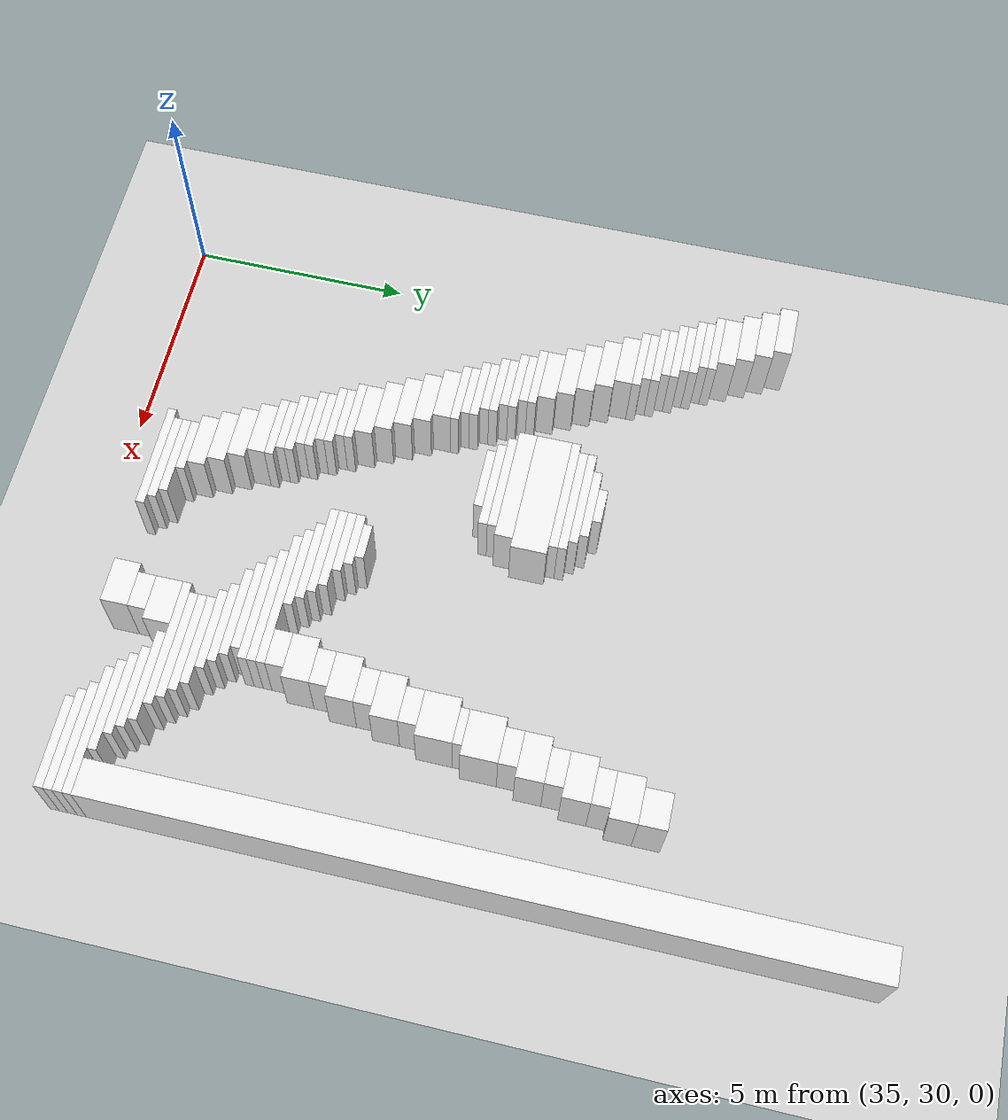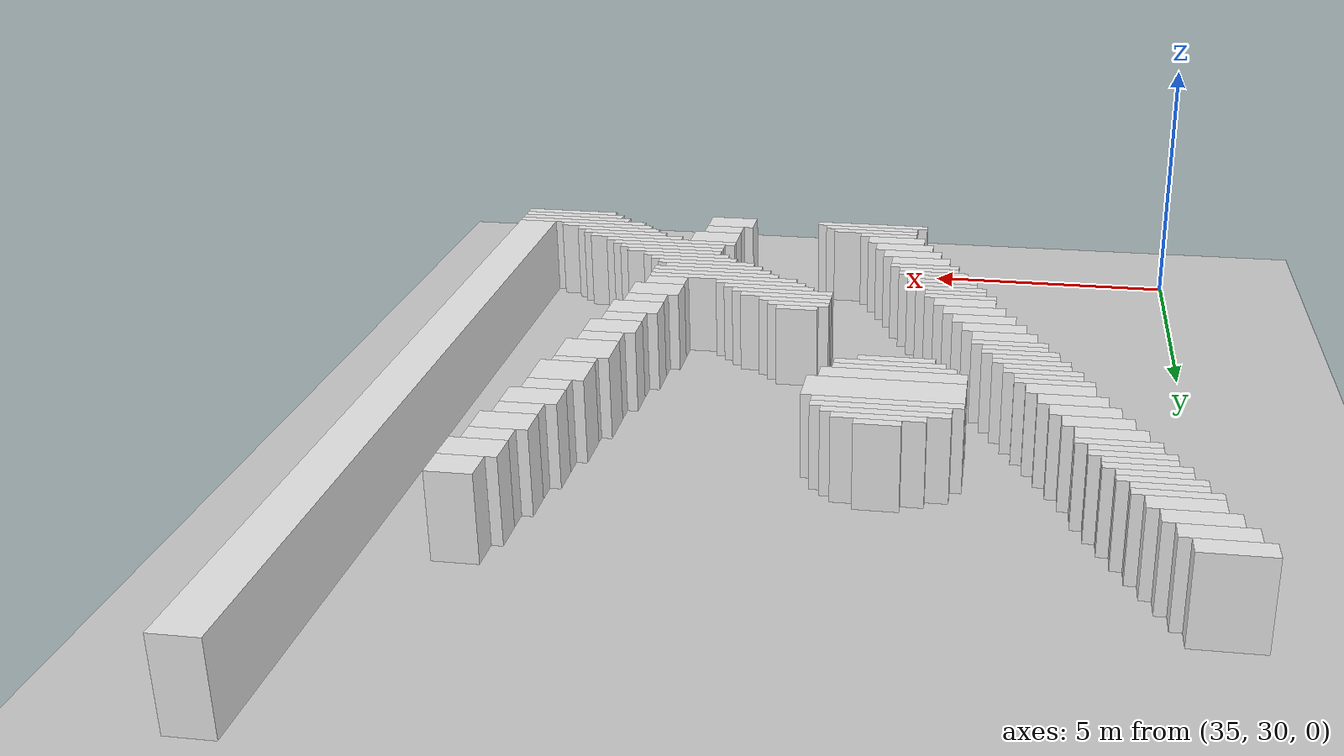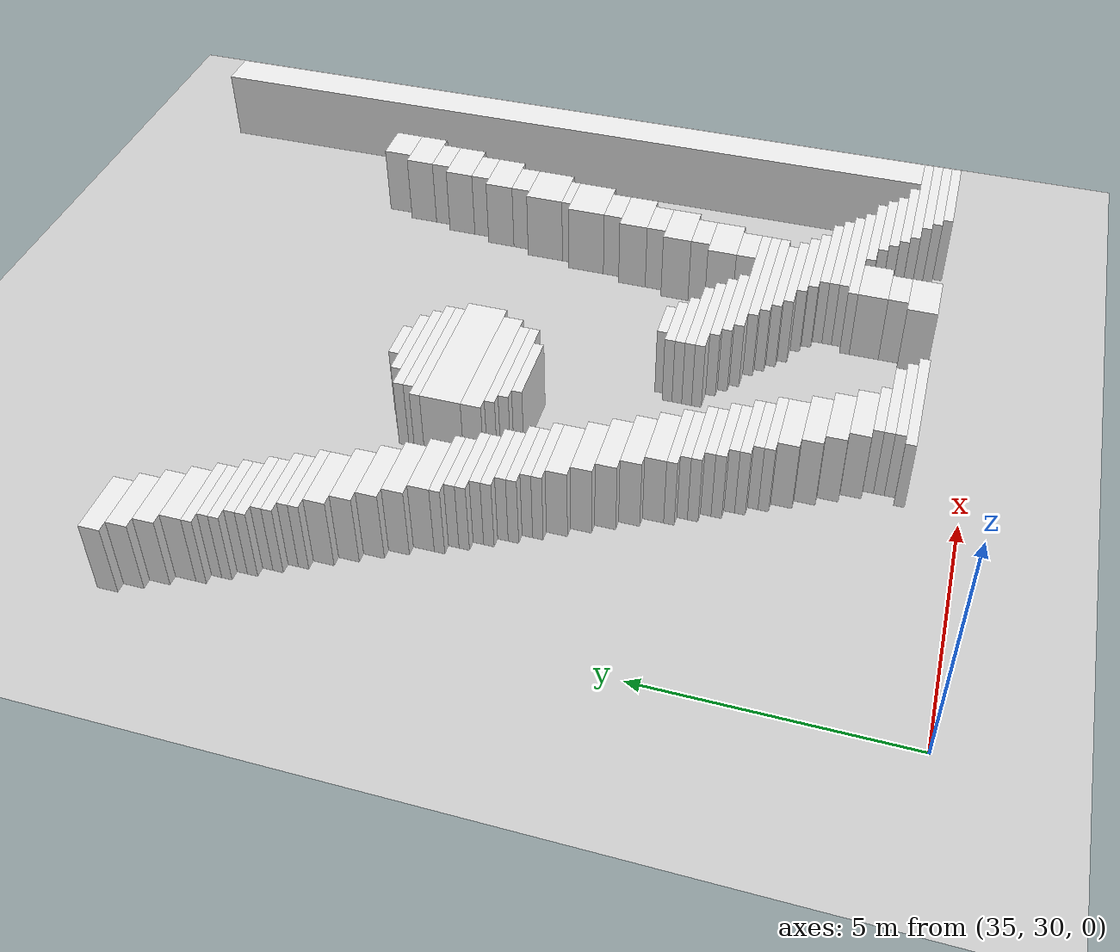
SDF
<sdf version="1.7">
 <world name="default">
  <model name="ground_plane">
   <static>1</static>
   <link name="link">
    <collision name="collision">
     <geometry><plane><normal>0 0 1</normal><size>120 120</size></plane></geometry>
    </collision>
    <visual name="visual">
     <geometry><plane><normal>0 0 1</normal><size>120 120</size></plane></geometry>
     <material>
      <script><uri>file://media/materials/scripts/gazebo.material</uri><name>Gazebo/Grey</name></script>
     </material>
    </visual>
   </link>
  </model>
  <model name="random_complex_02_model">
   <static>1</static>
   <link name="obs_158">
    <pose>35.0000 44.2000 0.8000 0 0 0</pose>
    <collision name="obs_158_col"><geometry><box><size>1.2000 0.4000 1.6000</size></box></geometry></collision>
    <visual name="obs_158_vis">
     <geometry><box><size>1.2000 0.4000 1.6000</size></box></geometry>
     <material>
      <script><uri>file://media/materials/scripts/gazebo.material</uri><name>Gazebo/White</name></script>
     </material>
    </visual>
   </link>
   <link name="obs_173">
    <pose>35.2000 43.8000 0.8000 0 0 0</pose>
    <collision name="obs_173_col"><geometry><box><size>1.2000 0.4000 1.6000</size></box></geometry></collision>
    <visual name="obs_173_vis">
     <geometry><box><size>1.2000 0.4000 1.6000</size></box></geometry>
     <material>
      <script><uri>file://media/materials/scripts/gazebo.material</uri><name>Gazebo/White</name></script>
     </material>
    </visual>
   </link>
   <link name="obs_186">
    <pose>35.4000 43.4000 0.8000 0 0 0</pose>
    <collision name="obs_186_col"><geometry><box><size>1.2000 0.4000 1.6000</size></box></geometry></collision>
    <visual name="obs_186_vis">
     <geometry><box><size>1.2000 0.4000 1.6000</size></box></geometry>
     <material>
      <script><uri>file://media/materials/scripts/gazebo.material</uri><name>Gazebo/White</name></script>
     </material>
    </visual>
   </link>
   <link name="obs_193">
    <pose>46.8000 43.3000 0.8000 0 0 0</pose>
    <collision name="obs_193_col"><geometry><box><size>0.8000 0.6000 1.6000</size></box></geometry></collision>
    <visual name="obs_193_vis">
     <geometry><box><size>0.8000 0.6000 1.6000</size></box></geometry>
     <material>
      <script><uri>file://media/materials/scripts/gazebo.material</uri><name>Gazebo/White</name></script>
     </material>
    </visual>
   </link>
   <link name="obs_201">
    <pose>35.6000 43.0000 0.8000 0 0 0</pose>
    <collision name="obs_201_col"><geometry><box><size>1.2000 0.4000 1.6000</size></box></geometry></collision>
    <visual name="obs_201_vis">
     <geometry><box><size>1.2000 0.4000 1.6000</size></box></geometry>
     <material>
      <script><uri>file://media/materials/scripts/gazebo.material</uri><name>Gazebo/White</name></script>
     </material>
    </visual>
   </link>
   <link name="obs_212">
    <pose>35.7000 42.7000 0.8000 0 0 0</pose>
    <collision name="obs_212_col"><geometry><box><size>1.4000 0.2000 1.6000</size></box></geometry></collision>
    <visual name="obs_212_vis">
     <geometry><box><size>1.4000 0.2000 1.6000</size></box></geometry>
     <material>
      <script><uri>file://media/materials/scripts/gazebo.material</uri><name>Gazebo/White</name></script>
     </material>
    </visual>
   </link>
   <link name="obs_214">
    <pose>46.7000 42.7000 0.8000 0 0 0</pose>
    <collision name="obs_214_col"><geometry><box><size>1.0000 0.6000 1.6000</size></box></geometry></collision>
    <visual name="obs_214_vis">
     <geometry><box><size>1.0000 0.6000 1.6000</size></box></geometry>
     <material>
      <script><uri>file://media/materials/scripts/gazebo.material</uri><name>Gazebo/White</name></script>
     </material>
    </visual>
   </link>
   <link name="obs_221">
    <pose>35.8000 42.5000 0.8000 0 0 0</pose>
    <collision name="obs_221_col"><geometry><box><size>1.2000 0.2000 1.6000</size></box></geometry></collision>
    <visual name="obs_221_vis">
     <geometry><box><size>1.2000 0.2000 1.6000</size></box></geometry>
     <material>
      <script><uri>file://media/materials/scripts/gazebo.material</uri><name>Gazebo/White</name></script>
     </material>
    </visual>
   </link>
   <link name="obs_226">
    <pose>35.9000 42.3000 0.8000 0 0 0</pose>
    <collision name="obs_226_col"><geometry><box><size>1.4000 0.2000 1.6000</size></box></geometry></collision>
    <visual name="obs_226_vis">
     <geometry><box><size>1.4000 0.2000 1.6000</size></box></geometry>
     <material>
      <script><uri>file://media/materials/scripts/gazebo.material</uri><name>Gazebo/White</name></script>
     </material>
    </visual>
   </link>
   <link name="obs_230">
    <pose>46.6000 42.2000 0.8000 0 0 0</pose>
    <collision name="obs_230_col"><geometry><box><size>0.8000 0.4000 1.6000</size></box></geometry></collision>
    <visual name="obs_230_vis">
     <geometry><box><size>0.8000 0.4000 1.6000</size></box></geometry>
     <material>
      <script><uri>file://media/materials/scripts/gazebo.material</uri><name>Gazebo/White</name></script>
     </material>
    </visual>
   </link>
   <link name="obs_233">
    <pose>36.0000 42.1000 0.8000 0 0 0</pose>
    <collision name="obs_233_col"><geometry><box><size>1.2000 0.2000 1.6000</size></box></geometry></collision>
    <visual name="obs_233_vis">
     <geometry><box><size>1.2000 0.2000 1.6000</size></box></geometry>
     <material>
      <script><uri>file://media/materials/scripts/gazebo.material</uri><name>Gazebo/White</name></script>
     </material>
    </visual>
   </link>
   <link name="obs_241">
    <pose>36.1000 41.9000 0.8000 0 0 0</pose>
    <collision name="obs_241_col"><geometry><box><size>1.4000 0.2000 1.6000</size></box></geometry></collision>
    <visual name="obs_241_vis">
     <geometry><box><size>1.4000 0.2000 1.6000</size></box></geometry>
     <material>
      <script><uri>file://media/materials/scripts/gazebo.material</uri><name>Gazebo/White</name></script>
     </material>
    </visual>
   </link>
   <link name="obs_247">
    <pose>36.2000 41.7000 0.8000 0 0 0</pose>
    <collision name="obs_247_col"><geometry><box><size>1.2000 0.2000 1.6000</size></box></geometry></collision>
    <visual name="obs_247_vis">
     <geometry><box><size>1.2000 0.2000 1.6000</size></box></geometry>
     <material>
      <script><uri>file://media/materials/scripts/gazebo.material</uri><name>Gazebo/White</name></script>
     </material>
    </visual>
   </link>
   <link name="obs_251">
    <pose>46.5000 41.7000 0.8000 0 0 0</pose>
    <collision name="obs_251_col"><geometry><box><size>1.0000 0.6000 1.6000</size></box></geometry></collision>
    <visual name="obs_251_vis">
     <geometry><box><size>1.0000 0.6000 1.6000</size></box></geometry>
     <material>
      <script><uri>file://media/materials/scripts/gazebo.material</uri><name>Gazebo/White</name></script>
     </material>
    </visual>
   </link>
   <link name="obs_258">
    <pose>36.3000 41.5000 0.8000 0 0 0</pose>
    <collision name="obs_258_col"><geometry><box><size>1.4000 0.2000 1.6000</size></box></geometry></collision>
    <visual name="obs_258_vis">
     <geometry><box><size>1.4000 0.2000 1.6000</size></box></geometry>
     <material>
      <script><uri>file://media/materials/scripts/gazebo.material</uri><name>Gazebo/White</name></script>
     </material>
    </visual>
   </link>
   <link name="obs_269">
    <pose>36.4000 41.3000 0.8000 0 0 0</pose>
    <collision name="obs_269_col"><geometry><box><size>1.2000 0.2000 1.6000</size></box></geometry></collision>
    <visual name="obs_269_vis">
     <geometry><box><size>1.2000 0.2000 1.6000</size></box></geometry>
     <material>
      <script><uri>file://media/materials/scripts/gazebo.material</uri><name>Gazebo/White</name></script>
     </material>
    </visual>
   </link>
   <link name="obs_270">
    <pose>46.4000 41.2000 0.8000 0 0 0</pose>
    <collision name="obs_270_col"><geometry><box><size>0.8000 0.4000 1.6000</size></box></geometry></collision>
    <visual name="obs_270_vis">
     <geometry><box><size>0.8000 0.4000 1.6000</size></box></geometry>
     <material>
      <script><uri>file://media/materials/scripts/gazebo.material</uri><name>Gazebo/White</name></script>
     </material>
    </visual>
   </link>
   <link name="obs_278">
    <pose>36.5000 41.1000 0.8000 0 0 0</pose>
    <collision name="obs_278_col"><geometry><box><size>1.4000 0.2000 1.6000</size></box></geometry></collision>
    <visual name="obs_278_vis">
     <geometry><box><size>1.4000 0.2000 1.6000</size></box></geometry>
     <material>
      <script><uri>file://media/materials/scripts/gazebo.material</uri><name>Gazebo/White</name></script>
     </material>
    </visual>
   </link>
   <link name="obs_287">
    <pose>40.4000 40.9000 0.8000 0 0 0</pose>
    <collision name="obs_287_col"><geometry><box><size>0.8000 0.2000 1.6000</size></box></geometry></collision>
    <visual name="obs_287_vis">
     <geometry><box><size>0.8000 0.2000 1.6000</size></box></geometry>
     <material>
      <script><uri>file://media/materials/scripts/gazebo.material</uri><name>Gazebo/White</name></script>
     </material>
    </visual>
   </link>
   <link name="obs_289">
    <pose>36.6000 40.8000 0.8000 0 0 0</pose>
    <collision name="obs_289_col"><geometry><box><size>1.2000 0.4000 1.6000</size></box></geometry></collision>
    <visual name="obs_289_vis">
     <geometry><box><size>1.2000 0.4000 1.6000</size></box></geometry>
     <material>
      <script><uri>file://media/materials/scripts/gazebo.material</uri><name>Gazebo/White</name></script>
     </material>
    </visual>
   </link>
   <link name="obs_297">
    <pose>40.4000 40.7000 0.8000 0 0 0</pose>
    <collision name="obs_297_col"><geometry><box><size>1.6000 0.2000 1.6000</size></box></geometry></collision>
    <visual name="obs_297_vis">
     <geometry><box><size>1.6000 0.2000 1.6000</size></box></geometry>
     <material>
      <script><uri>file://media/materials/scripts/gazebo.material</uri><name>Gazebo/White</name></script>
     </material>
    </visual>
   </link>
   <link name="obs_298">
    <pose>46.3000 40.7000 0.8000 0 0 0</pose>
    <collision name="obs_298_col"><geometry><box><size>1.0000 0.6000 1.6000</size></box></geometry></collision>
    <visual name="obs_298_vis">
     <geometry><box><size>1.0000 0.6000 1.6000</size></box></geometry>
     <material>
      <script><uri>file://media/materials/scripts/gazebo.material</uri><name>Gazebo/White</name></script>
     </material>
    </visual>
   </link>
   <link name="obs_309">
    <pose>40.3000 40.5000 0.8000 0 0 0</pose>
    <collision name="obs_309_col"><geometry><box><size>2.2000 0.2000 1.6000</size></box></geometry></collision>
    <visual name="obs_309_vis">
     <geometry><box><size>2.2000 0.2000 1.6000</size></box></geometry>
     <material>
      <script><uri>file://media/materials/scripts/gazebo.material</uri><name>Gazebo/White</name></script>
     </material>
    </visual>
   </link>
   <link name="obs_310">
    <pose>36.8000 40.4000 0.8000 0 0 0</pose>
    <collision name="obs_310_col"><geometry><box><size>1.2000 0.4000 1.6000</size></box></geometry></collision>
    <visual name="obs_310_vis">
     <geometry><box><size>1.2000 0.4000 1.6000</size></box></geometry>
     <material>
      <script><uri>file://media/materials/scripts/gazebo.material</uri><name>Gazebo/White</name></script>
     </material>
    </visual>
   </link>
   <link name="obs_316">
    <pose>40.4000 40.3000 0.8000 0 0 0</pose>
    <collision name="obs_316_col"><geometry><box><size>2.4000 0.2000 1.6000</size></box></geometry></collision>
    <visual name="obs_316_vis">
     <geometry><box><size>2.4000 0.2000 1.6000</size></box></geometry>
     <material>
      <script><uri>file://media/materials/scripts/gazebo.material</uri><name>Gazebo/White</name></script>
     </material>
    </visual>
   </link>
   <link name="obs_322">
    <pose>46.2000 40.2000 0.8000 0 0 0</pose>
    <collision name="obs_322_col"><geometry><box><size>0.8000 0.4000 1.6000</size></box></geometry></collision>
    <visual name="obs_322_vis">
     <geometry><box><size>0.8000 0.4000 1.6000</size></box></geometry>
     <material>
      <script><uri>file://media/materials/scripts/gazebo.material</uri><name>Gazebo/White</name></script>
     </material>
    </visual>
   </link>
   <link name="obs_328">
    <pose>40.3000 40.1000 0.8000 0 0 0</pose>
    <collision name="obs_328_col"><geometry><box><size>2.6000 0.2000 1.6000</size></box></geometry></collision>
    <visual name="obs_328_vis">
     <geometry><box><size>2.6000 0.2000 1.6000</size></box></geometry>
     <material>
      <script><uri>file://media/materials/scripts/gazebo.material</uri><name>Gazebo/White</name></script>
     </material>
    </visual>
   </link>
   <link name="obs_329">
    <pose>37.0000 40.0000 0.8000 0 0 0</pose>
    <collision name="obs_329_col"><geometry><box><size>1.2000 0.4000 1.6000</size></box></geometry></collision>
    <visual name="obs_329_vis">
     <geometry><box><size>1.2000 0.4000 1.6000</size></box></geometry>
     <material>
      <script><uri>file://media/materials/scripts/gazebo.material</uri><name>Gazebo/White</name></script>
     </material>
    </visual>
   </link>
   <link name="obs_345">
    <pose>37.2000 39.6000 0.8000 0 0 0</pose>
    <collision name="obs_345_col"><geometry><box><size>1.2000 0.4000 1.6000</size></box></geometry></collision>
    <visual name="obs_345_vis">
     <geometry><box><size>1.2000 0.4000 1.6000</size></box></geometry>
     <material>
      <script><uri>file://media/materials/scripts/gazebo.material</uri><name>Gazebo/White</name></script>
     </material>
    </visual>
   </link>
   <link name="obs_352">
    <pose>40.4000 39.6000 0.8000 0 0 0</pose>
    <collision name="obs_352_col"><geometry><box><size>2.8000 0.8000 1.6000</size></box></geometry></collision>
    <visual name="obs_352_vis">
     <geometry><box><size>2.8000 0.8000 1.6000</size></box></geometry>
     <material>
      <script><uri>file://media/materials/scripts/gazebo.material</uri><name>Gazebo/White</name></script>
     </material>
    </visual>
   </link>
   <link name="obs_353">
    <pose>46.1000 39.6000 0.8000 0 0 0</pose>
    <collision name="obs_353_col"><geometry><box><size>1.0000 0.8000 1.6000</size></box></geometry></collision>
    <visual name="obs_353_vis">
     <geometry><box><size>1.0000 0.8000 1.6000</size></box></geometry>
     <material>
      <script><uri>file://media/materials/scripts/gazebo.material</uri><name>Gazebo/White</name></script>
     </material>
    </visual>
   </link>
   <link name="obs_361">
    <pose>37.4000 39.2000 0.8000 0 0 0</pose>
    <collision name="obs_361_col"><geometry><box><size>1.2000 0.4000 1.6000</size></box></geometry></collision>
    <visual name="obs_361_vis">
     <geometry><box><size>1.2000 0.4000 1.6000</size></box></geometry>
     <material>
      <script><uri>file://media/materials/scripts/gazebo.material</uri><name>Gazebo/White</name></script>
     </material>
    </visual>
   </link>
   <link name="obs_369">
    <pose>46.0000 39.1000 0.8000 0 0 0</pose>
    <collision name="obs_369_col"><geometry><box><size>0.8000 0.2000 1.6000</size></box></geometry></collision>
    <visual name="obs_369_vis">
     <geometry><box><size>0.8000 0.2000 1.6000</size></box></geometry>
     <material>
      <script><uri>file://media/materials/scripts/gazebo.material</uri><name>Gazebo/White</name></script>
     </material>
    </visual>
   </link>
   <link name="obs_372">
    <pose>40.3000 39.0000 0.8000 0 0 0</pose>
    <collision name="obs_372_col"><geometry><box><size>2.6000 0.4000 1.6000</size></box></geometry></collision>
    <visual name="obs_372_vis">
     <geometry><box><size>2.6000 0.4000 1.6000</size></box></geometry>
     <material>
      <script><uri>file://media/materials/scripts/gazebo.material</uri><name>Gazebo/White</name></script>
     </material>
    </visual>
   </link>
   <link name="obs_379">
    <pose>37.5000 38.9000 0.8000 0 0 0</pose>
    <collision name="obs_379_col"><geometry><box><size>1.4000 0.2000 1.6000</size></box></geometry></collision>
    <visual name="obs_379_vis">
     <geometry><box><size>1.4000 0.2000 1.6000</size></box></geometry>
     <material>
      <script><uri>file://media/materials/scripts/gazebo.material</uri><name>Gazebo/White</name></script>
     </material>
    </visual>
   </link>
   <link name="obs_389">
    <pose>37.6000 38.7000 0.8000 0 0 0</pose>
    <collision name="obs_389_col"><geometry><box><size>1.2000 0.2000 1.6000</size></box></geometry></collision>
    <visual name="obs_389_vis">
     <geometry><box><size>1.2000 0.2000 1.6000</size></box></geometry>
     <material>
      <script><uri>file://media/materials/scripts/gazebo.material</uri><name>Gazebo/White</name></script>
     </material>
    </visual>
   </link>
   <link name="obs_390">
    <pose>40.3000 38.7000 0.8000 0 0 0</pose>
    <collision name="obs_390_col"><geometry><box><size>2.2000 0.2000 1.6000</size></box></geometry></collision>
    <visual name="obs_390_vis">
     <geometry><box><size>2.2000 0.2000 1.6000</size></box></geometry>
     <material>
      <script><uri>file://media/materials/scripts/gazebo.material</uri><name>Gazebo/White</name></script>
     </material>
    </visual>
   </link>
   <link name="obs_399">
    <pose>37.7000 38.5000 0.8000 0 0 0</pose>
    <collision name="obs_399_col"><geometry><box><size>1.4000 0.2000 1.6000</size></box></geometry></collision>
    <visual name="obs_399_vis">
     <geometry><box><size>1.4000 0.2000 1.6000</size></box></geometry>
     <material>
      <script><uri>file://media/materials/scripts/gazebo.material</uri><name>Gazebo/White</name></script>
     </material>
    </visual>
   </link>
   <link name="obs_400">
    <pose>40.4000 38.5000 0.8000 0 0 0</pose>
    <collision name="obs_400_col"><geometry><box><size>2.0000 0.2000 1.6000</size></box></geometry></collision>
    <visual name="obs_400_vis">
     <geometry><box><size>2.0000 0.2000 1.6000</size></box></geometry>
     <material>
      <script><uri>file://media/materials/scripts/gazebo.material</uri><name>Gazebo/White</name></script>
     </material>
    </visual>
   </link>
   <link name="obs_401">
    <pose>45.9000 38.6000 0.8000 0 0 0</pose>
    <collision name="obs_401_col"><geometry><box><size>1.0000 0.8000 1.6000</size></box></geometry></collision>
    <visual name="obs_401_vis">
     <geometry><box><size>1.0000 0.8000 1.6000</size></box></geometry>
     <material>
      <script><uri>file://media/materials/scripts/gazebo.material</uri><name>Gazebo/White</name></script>
     </material>
    </visual>
   </link>
   <link name="obs_409">
    <pose>37.8000 38.3000 0.8000 0 0 0</pose>
    <collision name="obs_409_col"><geometry><box><size>1.2000 0.2000 1.6000</size></box></geometry></collision>
    <visual name="obs_409_vis">
     <geometry><box><size>1.2000 0.2000 1.6000</size></box></geometry>
     <material>
      <script><uri>file://media/materials/scripts/gazebo.material</uri><name>Gazebo/White</name></script>
     </material>
    </visual>
   </link>
   <link name="obs_410">
    <pose>40.3000 38.3000 0.8000 0 0 0</pose>
    <collision name="obs_410_col"><geometry><box><size>1.4000 0.2000 1.6000</size></box></geometry></collision>
    <visual name="obs_410_vis">
     <geometry><box><size>1.4000 0.2000 1.6000</size></box></geometry>
     <material>
      <script><uri>file://media/materials/scripts/gazebo.material</uri><name>Gazebo/White</name></script>
     </material>
    </visual>
   </link>
   <link name="obs_417">
    <pose>37.9000 38.1000 0.8000 0 0 0</pose>
    <collision name="obs_417_col"><geometry><box><size>1.4000 0.2000 1.6000</size></box></geometry></collision>
    <visual name="obs_417_vis">
     <geometry><box><size>1.4000 0.2000 1.6000</size></box></geometry>
     <material>
      <script><uri>file://media/materials/scripts/gazebo.material</uri><name>Gazebo/White</name></script>
     </material>
    </visual>
   </link>
   <link name="obs_419">
    <pose>45.8000 38.0000 0.8000 0 0 0</pose>
    <collision name="obs_419_col"><geometry><box><size>0.8000 0.4000 1.6000</size></box></geometry></collision>
    <visual name="obs_419_vis">
     <geometry><box><size>0.8000 0.4000 1.6000</size></box></geometry>
     <material>
      <script><uri>file://media/materials/scripts/gazebo.material</uri><name>Gazebo/White</name></script>
     </material>
    </visual>
   </link>
   <link name="obs_427">
    <pose>38.0000 37.9000 0.8000 0 0 0</pose>
    <collision name="obs_427_col"><geometry><box><size>1.2000 0.2000 1.6000</size></box></geometry></collision>
    <visual name="obs_427_vis">
     <geometry><box><size>1.2000 0.2000 1.6000</size></box></geometry>
     <material>
      <script><uri>file://media/materials/scripts/gazebo.material</uri><name>Gazebo/White</name></script>
     </material>
    </visual>
   </link>
   <link name="obs_434">
    <pose>38.1000 37.7000 0.8000 0 0 0</pose>
    <collision name="obs_434_col"><geometry><box><size>1.4000 0.2000 1.6000</size></box></geometry></collision>
    <visual name="obs_434_vis">
     <geometry><box><size>1.4000 0.2000 1.6000</size></box></geometry>
     <material>
      <script><uri>file://media/materials/scripts/gazebo.material</uri><name>Gazebo/White</name></script>
     </material>
    </visual>
   </link>
   <link name="obs_441">
    <pose>38.2000 37.5000 0.8000 0 0 0</pose>
    <collision name="obs_441_col"><geometry><box><size>1.2000 0.2000 1.6000</size></box></geometry></collision>
    <visual name="obs_441_vis">
     <geometry><box><size>1.2000 0.2000 1.6000</size></box></geometry>
     <material>
      <script><uri>file://media/materials/scripts/gazebo.material</uri><name>Gazebo/White</name></script>
     </material>
    </visual>
   </link>
   <link name="obs_442">
    <pose>45.7000 37.5000 0.8000 0 0 0</pose>
    <collision name="obs_442_col"><geometry><box><size>1.0000 0.6000 1.6000</size></box></geometry></collision>
    <visual name="obs_442_vis">
     <geometry><box><size>1.0000 0.6000 1.6000</size></box></geometry>
     <material>
      <script><uri>file://media/materials/scripts/gazebo.material</uri><name>Gazebo/White</name></script>
     </material>
    </visual>
   </link>
   <link name="obs_449">
    <pose>38.3000 37.3000 0.8000 0 0 0</pose>
    <collision name="obs_449_col"><geometry><box><size>1.4000 0.2000 1.6000</size></box></geometry></collision>
    <visual name="obs_449_vis">
     <geometry><box><size>1.4000 0.2000 1.6000</size></box></geometry>
     <material>
      <script><uri>file://media/materials/scripts/gazebo.material</uri><name>Gazebo/White</name></script>
     </material>
    </visual>
   </link>
   <link name="obs_456">
    <pose>38.4000 37.0000 0.8000 0 0 0</pose>
    <collision name="obs_456_col"><geometry><box><size>1.2000 0.4000 1.6000</size></box></geometry></collision>
    <visual name="obs_456_vis">
     <geometry><box><size>1.2000 0.4000 1.6000</size></box></geometry>
     <material>
      <script><uri>file://media/materials/scripts/gazebo.material</uri><name>Gazebo/White</name></script>
     </material>
    </visual>
   </link>
   <link name="obs_457">
    <pose>45.6000 37.0000 0.8000 0 0 0</pose>
    <collision name="obs_457_col"><geometry><box><size>0.8000 0.4000 1.6000</size></box></geometry></collision>
    <visual name="obs_457_vis">
     <geometry><box><size>0.8000 0.4000 1.6000</size></box></geometry>
     <material>
      <script><uri>file://media/materials/scripts/gazebo.material</uri><name>Gazebo/White</name></script>
     </material>
    </visual>
   </link>
   <link name="obs_470">
    <pose>38.6000 36.6000 0.8000 0 0 0</pose>
    <collision name="obs_470_col"><geometry><box><size>1.2000 0.4000 1.6000</size></box></geometry></collision>
    <visual name="obs_470_vis">
     <geometry><box><size>1.2000 0.4000 1.6000</size></box></geometry>
     <material>
      <script><uri>file://media/materials/scripts/gazebo.material</uri><name>Gazebo/White</name></script>
     </material>
    </visual>
   </link>
   <link name="obs_476">
    <pose>45.5000 36.5000 0.8000 0 0 0</pose>
    <collision name="obs_476_col"><geometry><box><size>1.0000 0.6000 1.6000</size></box></geometry></collision>
    <visual name="obs_476_vis">
     <geometry><box><size>1.0000 0.6000 1.6000</size></box></geometry>
     <material>
      <script><uri>file://media/materials/scripts/gazebo.material</uri><name>Gazebo/White</name></script>
     </material>
    </visual>
   </link>
   <link name="obs_487">
    <pose>38.8000 36.2000 0.8000 0 0 0</pose>
    <collision name="obs_487_col"><geometry><box><size>1.2000 0.4000 1.6000</size></box></geometry></collision>
    <visual name="obs_487_vis">
     <geometry><box><size>1.2000 0.4000 1.6000</size></box></geometry>
     <material>
      <script><uri>file://media/materials/scripts/gazebo.material</uri><name>Gazebo/White</name></script>
     </material>
    </visual>
   </link>
   <link name="obs_498">
    <pose>42.4000 36.1000 0.8000 0 0 0</pose>
    <collision name="obs_498_col"><geometry><box><size>0.8000 0.2000 1.6000</size></box></geometry></collision>
    <visual name="obs_498_vis">
     <geometry><box><size>0.8000 0.2000 1.6000</size></box></geometry>
     <material>
      <script><uri>file://media/materials/scripts/gazebo.material</uri><name>Gazebo/White</name></script>
     </material>
    </visual>
   </link>
   <link name="obs_499">
    <pose>45.4000 36.0000 0.8000 0 0 0</pose>
    <collision name="obs_499_col"><geometry><box><size>0.8000 0.4000 1.6000</size></box></geometry></collision>
    <visual name="obs_499_vis">
     <geometry><box><size>0.8000 0.4000 1.6000</size></box></geometry>
     <material>
      <script><uri>file://media/materials/scripts/gazebo.material</uri><name>Gazebo/White</name></script>
     </material>
    </visual>
   </link>
   <link name="obs_506">
    <pose>42.4000 35.9000 0.8000 0 0 0</pose>
    <collision name="obs_506_col"><geometry><box><size>1.2000 0.2000 1.6000</size></box></geometry></collision>
    <visual name="obs_506_vis">
     <geometry><box><size>1.2000 0.2000 1.6000</size></box></geometry>
     <material>
      <script><uri>file://media/materials/scripts/gazebo.material</uri><name>Gazebo/White</name></script>
     </material>
    </visual>
   </link>
   <link name="obs_510">
    <pose>39.0000 35.8000 0.8000 0 0 0</pose>
    <collision name="obs_510_col"><geometry><box><size>1.2000 0.4000 1.6000</size></box></geometry></collision>
    <visual name="obs_510_vis">
     <geometry><box><size>1.2000 0.4000 1.6000</size></box></geometry>
     <material>
      <script><uri>file://media/materials/scripts/gazebo.material</uri><name>Gazebo/White</name></script>
     </material>
    </visual>
   </link>
   <link name="obs_517">
    <pose>42.5000 35.7000 0.8000 0 0 0</pose>
    <collision name="obs_517_col"><geometry><box><size>1.4000 0.2000 1.6000</size></box></geometry></collision>
    <visual name="obs_517_vis">
     <geometry><box><size>1.4000 0.2000 1.6000</size></box></geometry>
     <material>
      <script><uri>file://media/materials/scripts/gazebo.material</uri><name>Gazebo/White</name></script>
     </material>
    </visual>
   </link>
   <link name="obs_524">
    <pose>42.7000 35.5000 0.8000 0 0 0</pose>
    <collision name="obs_524_col"><geometry><box><size>1.8000 0.2000 1.6000</size></box></geometry></collision>
    <visual name="obs_524_vis">
     <geometry><box><size>1.8000 0.2000 1.6000</size></box></geometry>
     <material>
      <script><uri>file://media/materials/scripts/gazebo.material</uri><name>Gazebo/White</name></script>
     </material>
    </visual>
   </link>
   <link name="obs_525">
    <pose>45.3000 35.5000 0.8000 0 0 0</pose>
    <collision name="obs_525_col"><geometry><box><size>1.0000 0.6000 1.6000</size></box></geometry></collision>
    <visual name="obs_525_vis">
     <geometry><box><size>1.0000 0.6000 1.6000</size></box></geometry>
     <material>
      <script><uri>file://media/materials/scripts/gazebo.material</uri><name>Gazebo/White</name></script>
     </material>
    </visual>
   </link>
   <link name="obs_527">
    <pose>39.2000 35.4000 0.8000 0 0 0</pose>
    <collision name="obs_527_col"><geometry><box><size>1.2000 0.4000 1.6000</size></box></geometry></collision>
    <visual name="obs_527_vis">
     <geometry><box><size>1.2000 0.4000 1.6000</size></box></geometry>
     <material>
      <script><uri>file://media/materials/scripts/gazebo.material</uri><name>Gazebo/White</name></script>
     </material>
    </visual>
   </link>
   <link name="obs_534">
    <pose>42.8000 35.3000 0.8000 0 0 0</pose>
    <collision name="obs_534_col"><geometry><box><size>2.0000 0.2000 1.6000</size></box></geometry></collision>
    <visual name="obs_534_vis">
     <geometry><box><size>2.0000 0.2000 1.6000</size></box></geometry>
     <material>
      <script><uri>file://media/materials/scripts/gazebo.material</uri><name>Gazebo/White</name></script>
     </material>
    </visual>
   </link>
   <link name="obs_542">
    <pose>39.3000 35.1000 0.8000 0 0 0</pose>
    <collision name="obs_542_col"><geometry><box><size>1.4000 0.2000 1.6000</size></box></geometry></collision>
    <visual name="obs_542_vis">
     <geometry><box><size>1.4000 0.2000 1.6000</size></box></geometry>
     <material>
      <script><uri>file://media/materials/scripts/gazebo.material</uri><name>Gazebo/White</name></script>
     </material>
    </visual>
   </link>
   <link name="obs_543">
    <pose>43.1000 35.1000 0.8000 0 0 0</pose>
    <collision name="obs_543_col"><geometry><box><size>1.8000 0.2000 1.6000</size></box></geometry></collision>
    <visual name="obs_543_vis">
     <geometry><box><size>1.8000 0.2000 1.6000</size></box></geometry>
     <material>
      <script><uri>file://media/materials/scripts/gazebo.material</uri><name>Gazebo/White</name></script>
     </material>
    </visual>
   </link>
   <link name="obs_545">
    <pose>45.2000 35.0000 0.8000 0 0 0</pose>
    <collision name="obs_545_col"><geometry><box><size>0.8000 0.4000 1.6000</size></box></geometry></collision>
    <visual name="obs_545_vis">
     <geometry><box><size>0.8000 0.4000 1.6000</size></box></geometry>
     <material>
      <script><uri>file://media/materials/scripts/gazebo.material</uri><name>Gazebo/White</name></script>
     </material>
    </visual>
   </link>
   <link name="obs_552">
    <pose>39.4000 34.9000 0.8000 0 0 0</pose>
    <collision name="obs_552_col"><geometry><box><size>1.2000 0.2000 1.6000</size></box></geometry></collision>
    <visual name="obs_552_vis">
     <geometry><box><size>1.2000 0.2000 1.6000</size></box></geometry>
     <material>
      <script><uri>file://media/materials/scripts/gazebo.material</uri><name>Gazebo/White</name></script>
     </material>
    </visual>
   </link>
   <link name="obs_553">
    <pose>43.3000 34.9000 0.8000 0 0 0</pose>
    <collision name="obs_553_col"><geometry><box><size>1.8000 0.2000 1.6000</size></box></geometry></collision>
    <visual name="obs_553_vis">
     <geometry><box><size>1.8000 0.2000 1.6000</size></box></geometry>
     <material>
      <script><uri>file://media/materials/scripts/gazebo.material</uri><name>Gazebo/White</name></script>
     </material>
    </visual>
   </link>
   <link name="obs_561">
    <pose>39.5000 34.7000 0.8000 0 0 0</pose>
    <collision name="obs_561_col"><geometry><box><size>1.4000 0.2000 1.6000</size></box></geometry></collision>
    <visual name="obs_561_vis">
     <geometry><box><size>1.4000 0.2000 1.6000</size></box></geometry>
     <material>
      <script><uri>file://media/materials/scripts/gazebo.material</uri><name>Gazebo/White</name></script>
     </material>
    </visual>
   </link>
   <link name="obs_562">
    <pose>44.1000 34.7000 0.8000 0 0 0</pose>
    <collision name="obs_562_col"><geometry><box><size>3.0000 0.2000 1.6000</size></box></geometry></collision>
    <visual name="obs_562_vis">
     <geometry><box><size>3.0000 0.2000 1.6000</size></box></geometry>
     <material>
      <script><uri>file://media/materials/scripts/gazebo.material</uri><name>Gazebo/White</name></script>
     </material>
    </visual>
   </link>
   <link name="obs_569">
    <pose>39.6000 34.5000 0.8000 0 0 0</pose>
    <collision name="obs_569_col"><geometry><box><size>1.2000 0.2000 1.6000</size></box></geometry></collision>
    <visual name="obs_569_vis">
     <geometry><box><size>1.2000 0.2000 1.6000</size></box></geometry>
     <material>
      <script><uri>file://media/materials/scripts/gazebo.material</uri><name>Gazebo/White</name></script>
     </material>
    </visual>
   </link>
   <link name="obs_570">
    <pose>44.3000 34.5000 0.8000 0 0 0</pose>
    <collision name="obs_570_col"><geometry><box><size>2.6000 0.2000 1.6000</size></box></geometry></collision>
    <visual name="obs_570_vis">
     <geometry><box><size>2.6000 0.2000 1.6000</size></box></geometry>
     <material>
      <script><uri>file://media/materials/scripts/gazebo.material</uri><name>Gazebo/White</name></script>
     </material>
    </visual>
   </link>
   <link name="obs_577">
    <pose>39.7000 34.3000 0.8000 0 0 0</pose>
    <collision name="obs_577_col"><geometry><box><size>1.4000 0.2000 1.6000</size></box></geometry></collision>
    <visual name="obs_577_vis">
     <geometry><box><size>1.4000 0.2000 1.6000</size></box></geometry>
     <material>
      <script><uri>file://media/materials/scripts/gazebo.material</uri><name>Gazebo/White</name></script>
     </material>
    </visual>
   </link>
   <link name="obs_578">
    <pose>44.4000 34.3000 0.8000 0 0 0</pose>
    <collision name="obs_578_col"><geometry><box><size>2.4000 0.2000 1.6000</size></box></geometry></collision>
    <visual name="obs_578_vis">
     <geometry><box><size>2.4000 0.2000 1.6000</size></box></geometry>
     <material>
      <script><uri>file://media/materials/scripts/gazebo.material</uri><name>Gazebo/White</name></script>
     </material>
    </visual>
   </link>
   <link name="obs_587">
    <pose>39.8000 34.1000 0.8000 0 0 0</pose>
    <collision name="obs_587_col"><geometry><box><size>1.2000 0.2000 1.6000</size></box></geometry></collision>
    <visual name="obs_587_vis">
     <geometry><box><size>1.2000 0.2000 1.6000</size></box></geometry>
     <material>
      <script><uri>file://media/materials/scripts/gazebo.material</uri><name>Gazebo/White</name></script>
     </material>
    </visual>
   </link>
   <link name="obs_588">
    <pose>44.4000 34.1000 0.8000 0 0 0</pose>
    <collision name="obs_588_col"><geometry><box><size>2.0000 0.2000 1.6000</size></box></geometry></collision>
    <visual name="obs_588_vis">
     <geometry><box><size>2.0000 0.2000 1.6000</size></box></geometry>
     <material>
      <script><uri>file://media/materials/scripts/gazebo.material</uri><name>Gazebo/White</name></script>
     </material>
    </visual>
   </link>
   <link name="obs_595">
    <pose>39.9000 33.9000 0.8000 0 0 0</pose>
    <collision name="obs_595_col"><geometry><box><size>1.4000 0.2000 1.6000</size></box></geometry></collision>
    <visual name="obs_595_vis">
     <geometry><box><size>1.4000 0.2000 1.6000</size></box></geometry>
     <material>
      <script><uri>file://media/materials/scripts/gazebo.material</uri><name>Gazebo/White</name></script>
     </material>
    </visual>
   </link>
   <link name="obs_596">
    <pose>44.6000 33.9000 0.8000 0 0 0</pose>
    <collision name="obs_596_col"><geometry><box><size>2.0000 0.2000 1.6000</size></box></geometry></collision>
    <visual name="obs_596_vis">
     <geometry><box><size>2.0000 0.2000 1.6000</size></box></geometry>
     <material>
      <script><uri>file://media/materials/scripts/gazebo.material</uri><name>Gazebo/White</name></script>
     </material>
    </visual>
   </link>
   <link name="obs_605">
    <pose>40.0000 33.7000 0.8000 0 0 0</pose>
    <collision name="obs_605_col"><geometry><box><size>1.2000 0.2000 1.6000</size></box></geometry></collision>
    <visual name="obs_605_vis">
     <geometry><box><size>1.2000 0.2000 1.6000</size></box></geometry>
     <material>
      <script><uri>file://media/materials/scripts/gazebo.material</uri><name>Gazebo/White</name></script>
     </material>
    </visual>
   </link>
   <link name="obs_606">
    <pose>44.9000 33.7000 0.8000 0 0 0</pose>
    <collision name="obs_606_col"><geometry><box><size>1.8000 0.2000 1.6000</size></box></geometry></collision>
    <visual name="obs_606_vis">
     <geometry><box><size>1.8000 0.2000 1.6000</size></box></geometry>
     <material>
      <script><uri>file://media/materials/scripts/gazebo.material</uri><name>Gazebo/White</name></script>
     </material>
    </visual>
   </link>
   <link name="obs_614">
    <pose>40.1000 33.5000 0.8000 0 0 0</pose>
    <collision name="obs_614_col"><geometry><box><size>1.4000 0.2000 1.6000</size></box></geometry></collision>
    <visual name="obs_614_vis">
     <geometry><box><size>1.4000 0.2000 1.6000</size></box></geometry>
     <material>
      <script><uri>file://media/materials/scripts/gazebo.material</uri><name>Gazebo/White</name></script>
     </material>
    </visual>
   </link>
   <link name="obs_615">
    <pose>45.1000 33.5000 0.8000 0 0 0</pose>
    <collision name="obs_615_col"><geometry><box><size>1.8000 0.2000 1.6000</size></box></geometry></collision>
    <visual name="obs_615_vis">
     <geometry><box><size>1.8000 0.2000 1.6000</size></box></geometry>
     <material>
      <script><uri>file://media/materials/scripts/gazebo.material</uri><name>Gazebo/White</name></script>
     </material>
    </visual>
   </link>
   <link name="obs_624">
    <pose>45.4000 33.3000 0.8000 0 0 0</pose>
    <collision name="obs_624_col"><geometry><box><size>2.0000 0.2000 1.6000</size></box></geometry></collision>
    <visual name="obs_624_vis">
     <geometry><box><size>2.0000 0.2000 1.6000</size></box></geometry>
     <material>
      <script><uri>file://media/materials/scripts/gazebo.material</uri><name>Gazebo/White</name></script>
     </material>
    </visual>
   </link>
   <link name="obs_626">
    <pose>40.2000 33.2000 0.8000 0 0 0</pose>
    <collision name="obs_626_col"><geometry><box><size>1.2000 0.4000 1.6000</size></box></geometry></collision>
    <visual name="obs_626_vis">
     <geometry><box><size>1.2000 0.4000 1.6000</size></box></geometry>
     <material>
      <script><uri>file://media/materials/scripts/gazebo.material</uri><name>Gazebo/White</name></script>
     </material>
    </visual>
   </link>
   <link name="obs_632">
    <pose>45.5000 33.1000 0.8000 0 0 0</pose>
    <collision name="obs_632_col"><geometry><box><size>2.2000 0.2000 1.6000</size></box></geometry></collision>
    <visual name="obs_632_vis">
     <geometry><box><size>2.2000 0.2000 1.6000</size></box></geometry>
     <material>
      <script><uri>file://media/materials/scripts/gazebo.material</uri><name>Gazebo/White</name></script>
     </material>
    </visual>
   </link>
   <link name="obs_641">
    <pose>45.6000 32.9000 0.8000 0 0 0</pose>
    <collision name="obs_641_col"><geometry><box><size>2.4000 0.2000 1.6000</size></box></geometry></collision>
    <visual name="obs_641_vis">
     <geometry><box><size>2.4000 0.2000 1.6000</size></box></geometry>
     <material>
      <script><uri>file://media/materials/scripts/gazebo.material</uri><name>Gazebo/White</name></script>
     </material>
    </visual>
   </link>
   <link name="obs_645">
    <pose>40.4000 32.8000 0.8000 0 0 0</pose>
    <collision name="obs_645_col"><geometry><box><size>1.2000 0.4000 1.6000</size></box></geometry></collision>
    <visual name="obs_645_vis">
     <geometry><box><size>1.2000 0.4000 1.6000</size></box></geometry>
     <material>
      <script><uri>file://media/materials/scripts/gazebo.material</uri><name>Gazebo/White</name></script>
     </material>
    </visual>
   </link>
   <link name="obs_652">
    <pose>45.6000 32.7000 0.8000 0 0 0</pose>
    <collision name="obs_652_col"><geometry><box><size>2.8000 0.2000 1.6000</size></box></geometry></collision>
    <visual name="obs_652_vis">
     <geometry><box><size>2.8000 0.2000 1.6000</size></box></geometry>
     <material>
      <script><uri>file://media/materials/scripts/gazebo.material</uri><name>Gazebo/White</name></script>
     </material>
    </visual>
   </link>
   <link name="obs_659">
    <pose>46.4000 32.5000 0.8000 0 0 0</pose>
    <collision name="obs_659_col"><geometry><box><size>2.0000 0.2000 1.6000</size></box></geometry></collision>
    <visual name="obs_659_vis">
     <geometry><box><size>2.0000 0.2000 1.6000</size></box></geometry>
     <material>
      <script><uri>file://media/materials/scripts/gazebo.material</uri><name>Gazebo/White</name></script>
     </material>
    </visual>
   </link>
   <link name="obs_660">
    <pose>40.6000 32.4000 0.8000 0 0 0</pose>
    <collision name="obs_660_col"><geometry><box><size>1.2000 0.4000 1.6000</size></box></geometry></collision>
    <visual name="obs_660_vis">
     <geometry><box><size>1.2000 0.4000 1.6000</size></box></geometry>
     <material>
      <script><uri>file://media/materials/scripts/gazebo.material</uri><name>Gazebo/White</name></script>
     </material>
    </visual>
   </link>
   <link name="obs_668">
    <pose>46.7000 32.3000 0.8000 0 0 0</pose>
    <collision name="obs_668_col"><geometry><box><size>1.8000 0.2000 1.6000</size></box></geometry></collision>
    <visual name="obs_668_vis">
     <geometry><box><size>1.8000 0.2000 1.6000</size></box></geometry>
     <material>
      <script><uri>file://media/materials/scripts/gazebo.material</uri><name>Gazebo/White</name></script>
     </material>
    </visual>
   </link>
   <link name="obs_670">
    <pose>44.7000 32.3000 0.8000 0 0 0</pose>
    <collision name="obs_670_col"><geometry><box><size>1.0000 0.6000 1.6000</size></box></geometry></collision>
    <visual name="obs_670_vis">
     <geometry><box><size>1.0000 0.6000 1.6000</size></box></geometry>
     <material>
      <script><uri>file://media/materials/scripts/gazebo.material</uri><name>Gazebo/White</name></script>
     </material>
    </visual>
   </link>
   <link name="obs_677">
    <pose>46.9000 32.1000 0.8000 0 0 0</pose>
    <collision name="obs_677_col"><geometry><box><size>1.8000 0.2000 1.6000</size></box></geometry></collision>
    <visual name="obs_677_vis">
     <geometry><box><size>1.8000 0.2000 1.6000</size></box></geometry>
     <material>
      <script><uri>file://media/materials/scripts/gazebo.material</uri><name>Gazebo/White</name></script>
     </material>
    </visual>
   </link>
   <link name="obs_678">
    <pose>48.8000 40.1000 0.8000 0 0 0</pose>
    <collision name="obs_678_col"><geometry><box><size>0.8000 16.6000 1.6000</size></box></geometry></collision>
    <visual name="obs_678_vis">
     <geometry><box><size>0.8000 16.6000 1.6000</size></box></geometry>
     <material>
      <script><uri>file://media/materials/scripts/gazebo.material</uri><name>Gazebo/White</name></script>
     </material>
    </visual>
   </link>
   <link name="obs_680">
    <pose>40.8000 32.0000 0.8000 0 0 0</pose>
    <collision name="obs_680_col"><geometry><box><size>1.2000 0.4000 1.6000</size></box></geometry></collision>
    <visual name="obs_680_vis">
     <geometry><box><size>1.2000 0.4000 1.6000</size></box></geometry>
     <material>
      <script><uri>file://media/materials/scripts/gazebo.material</uri><name>Gazebo/White</name></script>
     </material>
    </visual>
   </link>
   <link name="obs_686">
    <pose>47.2000 31.9000 0.8000 0 0 0</pose>
    <collision name="obs_686_col"><geometry><box><size>2.0000 0.2000 1.6000</size></box></geometry></collision>
    <visual name="obs_686_vis">
     <geometry><box><size>2.0000 0.2000 1.6000</size></box></geometry>
     <material>
      <script><uri>file://media/materials/scripts/gazebo.material</uri><name>Gazebo/White</name></script>
     </material>
    </visual>
   </link>
   <link name="obs_689">
    <pose>44.6000 31.8000 0.8000 0 0 0</pose>
    <collision name="obs_689_col"><geometry><box><size>0.8000 0.4000 1.6000</size></box></geometry></collision>
    <visual name="obs_689_vis">
     <geometry><box><size>0.8000 0.4000 1.6000</size></box></geometry>
     <material>
      <script><uri>file://media/materials/scripts/gazebo.material</uri><name>Gazebo/White</name></script>
     </material>
    </visual>
   </link>
   <link name="obs_696">
    <pose>41.0000 31.7000 0.8000 0 0 0</pose>
    <collision name="obs_696_col"><geometry><box><size>1.2000 0.2000 1.6000</size></box></geometry></collision>
    <visual name="obs_696_vis">
     <geometry><box><size>1.2000 0.2000 1.6000</size></box></geometry>
     <material>
      <script><uri>file://media/materials/scripts/gazebo.material</uri><name>Gazebo/White</name></script>
     </material>
    </visual>
   </link>
   <link name="obs_697">
    <pose>47.8000 31.7000 0.8000 0 0 0</pose>
    <collision name="obs_697_col"><geometry><box><size>2.8000 0.2000 1.6000</size></box></geometry></collision>
    <visual name="obs_697_vis">
     <geometry><box><size>2.8000 0.2000 1.6000</size></box></geometry>
     <material>
      <script><uri>file://media/materials/scripts/gazebo.material</uri><name>Gazebo/White</name></script>
     </material>
    </visual>
   </link>
   <link name="obs_707">
    <pose>41.3000 31.5000 0.8000 0 0 0</pose>
    <collision name="obs_707_col"><geometry><box><size>1.8000 0.2000 1.6000</size></box></geometry></collision>
    <visual name="obs_707_vis">
     <geometry><box><size>1.8000 0.2000 1.6000</size></box></geometry>
     <material>
      <script><uri>file://media/materials/scripts/gazebo.material</uri><name>Gazebo/White</name></script>
     </material>
    </visual>
   </link>
   <link name="obs_708">
    <pose>48.0000 31.5000 0.8000 0 0 0</pose>
    <collision name="obs_708_col"><geometry><box><size>2.4000 0.2000 1.6000</size></box></geometry></collision>
    <visual name="obs_708_vis">
     <geometry><box><size>2.4000 0.2000 1.6000</size></box></geometry>
     <material>
      <script><uri>file://media/materials/scripts/gazebo.material</uri><name>Gazebo/White</name></script>
     </material>
    </visual>
   </link>
   <link name="obs_715">
    <pose>41.4000 31.3000 0.8000 0 0 0</pose>
    <collision name="obs_715_col"><geometry><box><size>2.0000 0.2000 1.6000</size></box></geometry></collision>
    <visual name="obs_715_vis">
     <geometry><box><size>2.0000 0.2000 1.6000</size></box></geometry>
     <material>
      <script><uri>file://media/materials/scripts/gazebo.material</uri><name>Gazebo/White</name></script>
     </material>
    </visual>
   </link>
   <link name="obs_716">
    <pose>48.1000 31.3000 0.8000 0 0 0</pose>
    <collision name="obs_716_col"><geometry><box><size>2.2000 0.2000 1.6000</size></box></geometry></collision>
    <visual name="obs_716_vis">
     <geometry><box><size>2.2000 0.2000 1.6000</size></box></geometry>
     <material>
      <script><uri>file://media/materials/scripts/gazebo.material</uri><name>Gazebo/White</name></script>
     </material>
    </visual>
   </link>
   <link name="obs_719">
    <pose>44.5000 31.3000 0.8000 0 0 0</pose>
    <collision name="obs_719_col"><geometry><box><size>1.0000 0.6000 1.6000</size></box></geometry></collision>
    <visual name="obs_719_vis">
     <geometry><box><size>1.0000 0.6000 1.6000</size></box></geometry>
     <material>
      <script><uri>file://media/materials/scripts/gazebo.material</uri><name>Gazebo/White</name></script>
     </material>
    </visual>
   </link>
   <link name="obs_728">
    <pose>41.4000 31.1000 0.8000 0 0 0</pose>
    <collision name="obs_728_col"><geometry><box><size>2.4000 0.2000 1.6000</size></box></geometry></collision>
    <visual name="obs_728_vis">
     <geometry><box><size>2.4000 0.2000 1.6000</size></box></geometry>
     <material>
      <script><uri>file://media/materials/scripts/gazebo.material</uri><name>Gazebo/White</name></script>
     </material>
    </visual>
   </link>
   <link name="obs_729">
    <pose>48.2000 31.1000 0.8000 0 0 0</pose>
    <collision name="obs_729_col"><geometry><box><size>2.0000 0.2000 1.6000</size></box></geometry></collision>
    <visual name="obs_729_vis">
     <geometry><box><size>2.0000 0.2000 1.6000</size></box></geometry>
     <material>
      <script><uri>file://media/materials/scripts/gazebo.material</uri><name>Gazebo/White</name></script>
     </material>
    </visual>
   </link>
  </model>
 </world>
</sdf>
